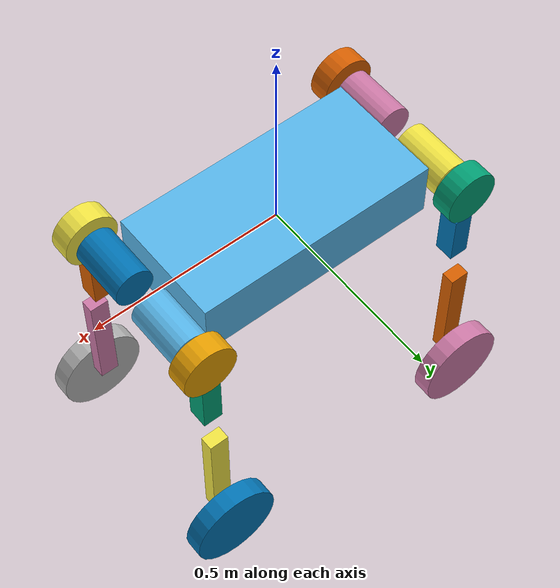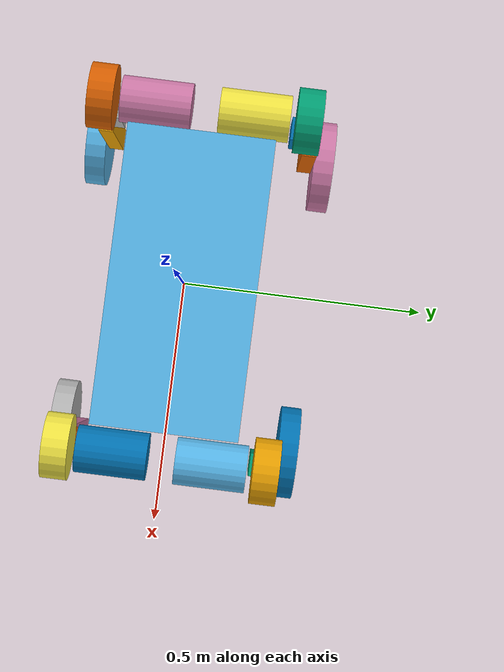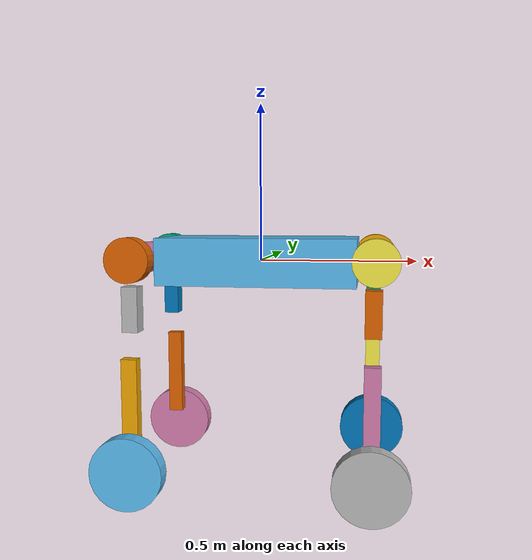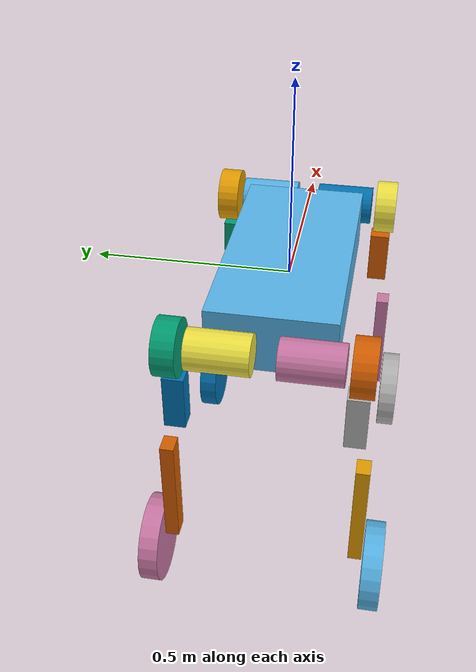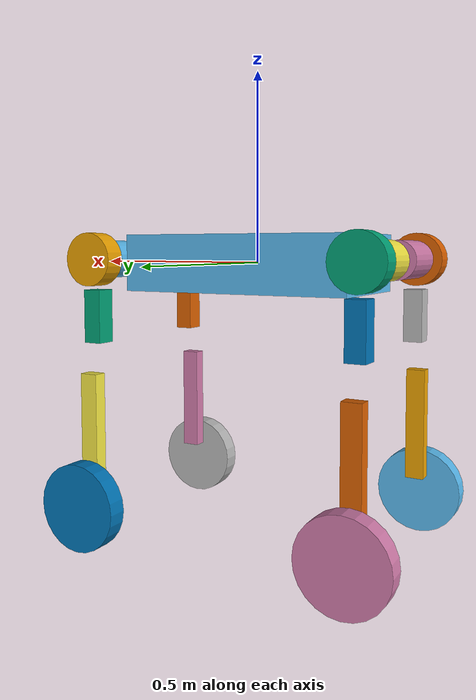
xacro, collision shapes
<?xml version="1.0"?>

<robot name="bitter" xmlns:xacro="http://www.ros.org/wiki/xacro">

    <xacro:include filename="$(find bitter)/xacro/const.xacro"/>
    <xacro:include filename="$(find bitter)/xacro/leg.xacro"/>

    <link name="base">
        <visual>
            <origin rpy="0 0 0" xyz="0 0 0"/>
            <geometry>
                <box size="0.001 0.001 0.001"/>
            </geometry>
        </visual>
    </link>

    <joint name="floating_base" type="fixed">
        <origin rpy="0 0 0" xyz="0 0 0"/>
        <parent link="base"/>
        <child link="trunk"/>
    </joint>

    <!-- 躯干 -->
    <link name="trunk">
        <visual>
            <origin rpy="0 0 0" xyz="0 0 0"/>
            <geometry>
                <mesh filename="package://bitter/meshes/Base.STL" scale="1 1 1"/>
            </geometry>
        </visual>
        <collision>
            <origin rpy="0 0 0" xyz="0 0 ${trunk_offset}"/>
            <geometry>
                <box size="${trunk_length} ${trunk_width} ${trunk_height}"/>
            </geometry>
        </collision>
        <inertial>
            <origin
                xyz="8.1667E-05 5.1958E-08 -8.1761E-05"
                rpy="0 0 0" />
            <mass value="${trunk_mass}" />
            <inertia
            ixx="0.014643"
            ixy="-7.4373E-07"
            ixz="-2.2677E-06"
            iyy="0.041348"
            iyz="-4.635E-06"
            izz="0.04937" />
        </inertial>
    </link>

    <!--imu-->
    <joint name="imu_joint" type="fixed">
        <parent link="base"/>
        <child link="imu_link"/>
        <origin rpy="0 0 0" xyz="0 0 0"/>
    </joint>

    <link name="imu_link">
        <inertial>
            <mass value="0.001"/>
            <origin rpy="0 0 0" xyz="0 0 0"/>
            <inertia ixx="0.0001" ixy="0" ixz="0" iyy="0.0001" iyz="0" izz="0.0001"/>
        </inertial>
        <visual>
            <origin rpy="0 0 0" xyz="0 0 0"/>
            <geometry>
                <box size="0.001 0.001 0.001"/>
            </geometry>

        </visual>
        <collision>
            <origin rpy="0 0 0" xyz="0 0 0"/>
            <geometry>
                <box size=".001 .001 .001"/>
            </geometry>
        </collision>
    </link>

    <!-- 4 legs 每条腿通过xacro:leg宏来实例化-->
    <xacro:leg name="FR" mirror="-1" mirror_dae= "False" front_hind="1"  front_hind_dae="True"  />
    <xacro:leg name="FL" mirror="1"  mirror_dae="True"   front_hind="1"  front_hind_dae="True"  />
    <xacro:leg name="RR" mirror="-1" mirror_dae="False"  front_hind="-1" front_hind_dae="False" />
    <xacro:leg name="RL" mirror="1"  mirror_dae="True"   front_hind="-1" front_hind_dae="False" />
</robot>

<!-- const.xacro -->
<robot xmlns:xacro="http://www.ros.org/wiki/xacro">

    <!-- Constants for robot dimensions -->
    <xacro:property name="PI" value="3.1415926535897931"/>

    <!-- 对于参数的修改，可视化的机器人只是虚拟的，碰撞为简单的几何体，参考宇树科技。未曾手动修改惯性
        矩阵。-->
    <!-- 碰撞体大小为测的sw模型值，大概率不改。但是碰撞体积和碰撞体积偏移量也许会时常修改
        在这里设参数化，这样子如果后续发现参数不合理，可以直接在这里修改 -->

    <!--原点在trunk的质心，虽然trunk是个空架子 -->
    <xacro:property name="trunk_width" value="0.310"/>
    <xacro:property name="trunk_length" value="0.630"/>
    <xacro:property name="trunk_height" value="0.150"/>
    <xacro:property name="trunk_offset" value="0.0"/><!--coollsion的z向偏移-->

    <!--hip指髋关节-->
    <xacro:property name="hip_length" value="0.055"/>
    <xacro:property name="hip_radius" value="0.070"/>
    <xacro:property name="hip_offset_y" value="0.13"/><!--是collision相对于link原点在y方向的s移-->
    <xacro:property name="hip_offset_x" value="0.070"/> <!--是joint相对于link原点在x方向的偏移-->

    <!--thigh指大腿关节-->
    <xacro:property name="thigh_length" value="0.140"/>
    <xacro:property name="thigh_width" value="0.052"/>
    <xacro:property name="thigh_height" value="0.050"/>
    <xacro:property name="thigh_offset_y" value="-0.040"/> <!--碰撞体的偏移-->

    <xacro:property name="thigh_joint_offset_x" value="0.065"/>
    <xacro:property name="thigh_joint_offset_y" value="0.1625"/> <!--指的joint在y方向的偏移，相对于2坐标系吧，要调-->

    <!--小腿关节-->
    <xacro:property name="calf_length" value="0.300"/>
    <xacro:property name="calf_width" value="0.035"/>
    <xacro:property name="calf_height" value="0.050"/>
    <xacro:property name="calf_offset_y" value="0.005"/> <!--碰撞体的偏移-->
    <xacro:property name="calf_joint_offset_y" value="-0.01885"/> <!--导出的值-->
    <xacro:property name="calf_joint_offset_z" value="-0.3 "/>

    <!--轮子关节-->
    <xacro:property name="foot_radius" value="0.115"/>
    <xacro:property name="foot_length" value="0.050"/>
    <xacro:property name="foot_joint_offset_y" value="0.051"/> <!--导出的值-->
    <xacro:property name="foot_joint_offset_z" value="-0.34408 "/>

    <xacro:property name="foot_offset" value="0.0"/> <!--是collision相对于link原点在y方向的偏移-->

    <!-- leg offset from trunk center value 整条腿的偏移，也就是髋关节碰撞体（小圆柱）
        的原点位置，这是左前腿的偏移，需要调>
        在hip中，leg_offset_xyz是hip的joint的，link的手填了，collision的是hip_offset -->
    <xacro:property name="leg_offset_x" value="0.30195"/>
    <xacro:property name="leg_offset_y" value="0.089394"/>
    <xacro:property name="leg_offset_z" value="0.009556"/>
    <!--5.21添加：髋关节碰撞圆柱体-->
    <xacro:property name="hip_stator_offset_x" value="0.07"/>
    <xacro:property name="hip_stator_offset_y" value="0.015"/>

    <!-- joint limits -->
    <xacro:property name="damping" value="0.0"/>
    <xacro:property name="friction" value="0.0"/>
    <xacro:property name="hip_position_max" value="0.79"/>
    <xacro:property name="hip_position_min" value="-0.79"/>
    <xacro:property name="hip_velocity_max" value="11.99"/>
    <xacro:property name="hip_torque_max" value="200"/>
    <xacro:property name="thigh_position_max" value="0.9"/>
    <xacro:property name="thigh_position_min" value="-1.0"/>
    <xacro:property name="thigh_velocity_max" value="11.99"/>
    <xacro:property name="thigh_torque_max" value="200"/>
    <xacro:property name="calf_position_max" value="2.0"/>
    <xacro:property name="calf_position_min" value="0.0"/>
    <xacro:property name="calf_velocity_max" value="11.99"/>
    <xacro:property name="calf_torque_max" value="200"/>
    <xacro:property name="foot_torque_max" value="35"/>
    <xacro:property name="foot_velocity_max" value="83.78"/>

    <!-- dynamics inertial value -->
    <!-- trunk 我已经手动赋值好了，下面腿太多了用参数-->
    <xacro:property name="trunk_mass" value="20.1"/> <!--没更新-->

    <!-- hip (left front) -->
    <xacro:property name="hip_mass" value="3.8143"/>
    <xacro:property name="hip_com_x" value="0.061582"/>
    <xacro:property name="hip_com_y" value="0.016575"/>
    <xacro:property name="hip_com_z" value="0.0023406"/>

    <xacro:property name="hip_ixx" value="0.00126034"/>
    <xacro:property name="hip_ixy" value="-2.577E-05"/>
    <xacro:property name="hip_ixz" value="-3.507E-05"/>
    <xacro:property name="hip_iyy" value="0.00072589"/>
    <xacro:property name="hip_iyz" value="1.861E-05"/>
    <xacro:property name="hip_izz" value="0.00136839"/>

        <!-- thigh -->
    <xacro:property name="thigh_mass" value="1.9052"/>
    <xacro:property name="thigh_com_x" value="-0.0017599"/>
    <xacro:property name="thigh_com_y" value="-0.033877"/>
    <xacro:property name="thigh_com_z" value="-0.087245"/>

    <xacro:property name="thigh_ixx" value="0.00687419"/>
    <xacro:property name="thigh_ixy" value="4.05E-06"/>
    <xacro:property name="thigh_ixz" value="-6.615E-05"/>
    <xacro:property name="thigh_iyy" value="0.00716420"/>
    <xacro:property name="thigh_iyz" value="8.810E-05"/>
    <xacro:property name="thigh_izz" value="0.00074917"/>

    <!-- calf 需要zuo'qian'tui -->
    <xacro:property name="calf_mass" value="0.75"/> <!--验证了-->
    <xacro:property name="calf_com_x" value="0.0067148"/>
    <xacro:property name="calf_com_y" value="-0.0065919"/>
    <xacro:property name="calf_com_z" value="-0.25451"/>

    <xacro:property name="calf_ixx" value="0.00722169"/>
    <xacro:property name="calf_ixy" value="2.209E-05"/>
    <xacro:property name="calf_ixz" value="-0.00026683"/>
    <xacro:property name="calf_iyy" value="0.00739374"/>
    <xacro:property name="calf_iyz" value="0.00029351"/>
    <xacro:property name="calf_izz" value="0.00044439"/>

    <!-- foot 左前腿，这个的惯性矩阵没有改-->
    <xacro:property name="foot_mass" value="3.0157"/>
    <xacro:property name="foot_com_x" value="-4.9166E-06"/>
    <xacro:property name="foot_com_y" value="-0.00074558"/>
    <xacro:property name="foot_com_z" value="9.2139E-06"/>

    <xacro:property name="foot_ixx" value="0.0046374"/>
    <xacro:property name="foot_ixy" value="-2.4127E-08"/>
    <xacro:property name="foot_ixz" value="-4.0829E-06"/>
    <xacro:property name="foot_iyy" value="0.0088894"/>
    <xacro:property name="foot_iyz" value="-4.25E-08"/>
    <xacro:property name="foot_izz" value="0.0046429"/>

</robot>

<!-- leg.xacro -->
<robot xmlns:xacro="http://www.ros.org/wiki/xacro">

    <xacro:macro name="leg" params="name mirror mirror_dae front_hind front_hind_dae">

        <!--hip指髋关节-->
        <joint name="${name}_hip_joint" type="revolute">
            <xacro:if value="${(mirror_dae == False) and (front_hind_dae == True)}">
                <origin rpy="0 0 0" xyz="${leg_offset_x} ${-leg_offset_y} ${leg_offset_z}"/>
            </xacro:if>
            <xacro:if value="${(mirror_dae == True) and (front_hind_dae == True)}">
                <origin rpy="0 0 0" xyz="${leg_offset_x} ${leg_offset_y} ${leg_offset_z}"/>
            </xacro:if>
            <xacro:if value="${(mirror_dae == False) and (front_hind_dae == False)}">
                <origin rpy="0 0 0" xyz="${-leg_offset_x} ${-leg_offset_y} ${leg_offset_z}"/>
            </xacro:if>
            <xacro:if value="${(mirror_dae == True) and (front_hind_dae == False)}">
                <origin rpy="0 0 0" xyz="${-leg_offset_x} ${leg_offset_y} ${leg_offset_z}"/>
            </xacro:if>
            <parent link="base"/>
            <child link="${name}_hip"/>
            <axis xyz="1 0 0"/> <!--导出的是-1，绕世界坐标系的-y轴转，因为urdf导出反的，注意-->
            <dynamics damping="${damping}" friction="${friction}"/>
            <xacro:if value="${(mirror_dae == True)}">
                <limit effort="${hip_torque_max}" velocity="${hip_velocity_max}" lower="${hip_position_min}" upper="${hip_position_max}"/>
            </xacro:if>
            <xacro:if value="${(mirror_dae == False)}">
                <limit effort="${hip_torque_max}" velocity="${hip_velocity_max}" lower="${-hip_position_max}" upper="${-hip_position_min}"/>
            </xacro:if>
        </joint>

        <joint name="${name}_hip_stator_fixed" type="fixed">
            <xacro:if value="${(mirror_dae == False) and (front_hind_dae == True)}">
                <origin rpy="0 0 0" xyz="${hip_stator_offset_x} ${-hip_stator_offset_y} 0"/>
            </xacro:if>
            <xacro:if value="${(mirror_dae == True) and (front_hind_dae == True)}">
                <origin rpy="0 0 0" xyz="${hip_stator_offset_x} ${hip_stator_offset_y} 0"/>
            </xacro:if>
            <xacro:if value="${(mirror_dae == False) and (front_hind_dae == False)}">
                <origin rpy="0 0 0" xyz="${-hip_stator_offset_x} ${-hip_stator_offset_y} 0"/>
            </xacro:if>
            <xacro:if value="${(mirror_dae == True) and (front_hind_dae == False)}">
                <origin rpy="0 0 0" xyz="${-hip_stator_offset_x} ${hip_stator_offset_y} 0"/>
            </xacro:if>
            <parent link="${name}_hip"/>
            <child link="${name}_hip_stator"/>
            <origin rpy="0 0 0" xyz="0 0 0"/>
        </joint>

        <link name="${name}_hip">
            <visual> <!--注意：这里link的原点手敲的，如果重新导出记得改-->
                <xacro:if value="${(mirror_dae == True) and (front_hind_dae == True)}">
                    <origin rpy="0 0 0" xyz="0 0 0"/>
                    <geometry>
                        <mesh filename="package://bitter/meshes/FL_hip_link.STL" scale="1 1 1"/>
                    </geometry>
                </xacro:if>
                <xacro:if value="${(mirror_dae == False) and (front_hind_dae == True)}">
                    <origin rpy="0 0 0" xyz="0 0 0"/>
                    <geometry>
                        <mesh filename="package://bitter/meshes/FR_hip_link.STL" scale="1 1 1"/>
                    </geometry>
                </xacro:if>
                <xacro:if value="${(mirror_dae == True) and (front_hind_dae == False)}">
                    <origin rpy="0 0 0" xyz="0 0 0"/>
                    <geometry>
                        <mesh filename="package://bitter/meshes/RL_hip_link.STL" scale="1 1 1"/>
                    </geometry>
                </xacro:if>
                <xacro:if value="${(mirror_dae == False) and (front_hind_dae == False)}">
                    <origin rpy="0 0 0" xyz="0 0 0"/>
                    <geometry>
                        <mesh filename="package://bitter/meshes/RR_hip_link.STL" scale="1 1 1"/>
                    </geometry>
                </xacro:if>

            </visual>
            <collision>
                <origin rpy="${PI/2.0} 0 0" xyz="${hip_offset_x*front_hind} ${hip_offset_y*mirror} 0"/>
                <geometry>
                    <cylinder length="${hip_length}" radius="${hip_radius}"/>
                </geometry>
            </collision>
            <inertial>
                <origin rpy="0 0 0" xyz="${hip_com_x*front_hind} ${hip_com_y*mirror} ${hip_com_z}"/>
                <mass value="${hip_mass}"/>
                <inertia
                    ixx="${hip_ixx}" ixy="${hip_ixy*mirror*front_hind}" ixz="${hip_ixz*front_hind}"
                    iyy="${hip_iyy}" iyz="${hip_iyz*mirror}"
                    izz="${hip_izz}"/>
            </inertial>
        </link>

        <link name="${name}_hip_stator">
                <!--不需要视觉，只要碰撞，5.21加的-->
            <collision>
                <origin rpy="${PI/2.0} 0 0" xyz="0 0 0"/>
                <geometry>
                    <cylinder length="0.15" radius="0.05"/>
                </geometry>
            </collision>
        </link>

        <!--thigh指大腿-->
        <joint name="${name}_thigh_joint" type="revolute">
            <origin rpy="0 0 0" xyz="${thigh_joint_offset_x*front_hind} ${thigh_joint_offset_y*mirror} 0"/>
            <parent link="${name}_hip"/>
            <child link="${name}_thigh"/>
            <axis xyz="0 -1 0"/>
            <dynamics damping="${damping}" friction="${friction}"/>
            <limit effort="${thigh_torque_max}" velocity="${thigh_velocity_max}" lower="${thigh_position_min}" upper="${thigh_position_max}"/>
        </joint>

        <link name="${name}_thigh">
            <visual>
                <origin rpy="0 0 0" xyz="0 0 0"/>
                <geometry>
                    <xacro:if value="${mirror_dae == True}"> <!--左边-->
                        <mesh filename="package://bitter/meshes/FL_thigh_link.STL" scale="1 1 1"/>
                    </xacro:if>
                    <xacro:if value="${mirror_dae == False}"><!--右边-->
                        <mesh filename="package://bitter/meshes/FR_thigh_link.STL" scale="1 1 1"/>
                    </xacro:if>
                </geometry>
            </visual>
            <collision> <!--将碰撞几何体的原点设置在大腿长度的中间位置,叉掉，看不懂自己之前写什么了-->
                <origin rpy="0 ${PI/2.0} 0" xyz="0 ${thigh_offset_y*mirror} ${-thigh_length-0.01}"/>
                <geometry>
                    <box size="${thigh_length} ${thigh_width} ${thigh_height}"/>
                </geometry>
            </collision>
            <inertial>
                <origin rpy="0 0 0" xyz="${thigh_com_x} ${thigh_com_y*mirror} ${thigh_com_z}"/>
                <mass value="${thigh_mass}"/>
                <inertia
                    ixx="${thigh_ixx}" ixy="${thigh_ixy*mirror}" ixz="${thigh_ixz}"
                    iyy="${thigh_iyy}" iyz="${thigh_iyz*mirror}"
                    izz="${thigh_izz}"/>
            </inertial>
        </link>

        <!--calf指小腿-->
        <joint name="${name}_calf_joint" type="revolute">
            <origin rpy="0 0 0" xyz="0 ${calf_joint_offset_y*mirror} ${calf_joint_offset_z}"/>
            <parent link="${name}_thigh"/>
            <child link="${name}_calf"/>
            <axis xyz="0 -1 0"/> <!--这个和导出的一样1,但是不满足逆时针为正，改为-1-->
            <dynamics damping="${damping}" friction="${friction}"/>
            <xacro:if value="${front_hind_dae == True}">
                <limit effort="${calf_torque_max}" velocity="${calf_velocity_max}" lower="${calf_position_min}" upper="${calf_position_max}"/>
            </xacro:if>
            <xacro:if value="${front_hind_dae == False}">
                <limit effort="${calf_torque_max}" velocity="${calf_velocity_max}" lower="${-calf_position_max}" upper="${-calf_position_min}"/>
            </xacro:if>
        </joint>

        <link name="${name}_calf">
            <visual>
                <origin rpy="0 0 0" xyz="0 0 0"/>
                <geometry>
                    <xacro:if value="${mirror_dae == True}"> <!--左边-->
                        <mesh filename="package://bitter/meshes/FL_calf_link.STL" scale="1 1 1"/>
                    </xacro:if>
                    <xacro:if value="${mirror_dae == False}"><!--右边-->
                        <mesh filename="package://bitter/meshes/FR_calf_link.STL" scale="1 1 1"/>
                    </xacro:if>
                </geometry>
            </visual>
            <collision>
                <origin rpy="0 ${PI/2.0} 0" xyz="0 ${calf_offset_y*mirror} ${-calf_length/2.0}"/>
                <geometry>
                    <box size="${calf_length} ${calf_width} ${calf_height}"/>
                </geometry>
            </collision>
            <inertial>
                <origin rpy="0 0 0" xyz="${calf_com_x} ${calf_com_y*mirror} ${calf_com_z}"/>
                <mass value="${calf_mass}"/>
                <inertia
                    ixx="${calf_ixx}" ixy="${calf_ixy*mirror}" ixz="${calf_ixz}"
                    iyy="${calf_iyy}" iyz="${calf_iyz*mirror}"
                    izz="${calf_izz}"/>
            </inertial>
        </link>

        <!--foot指轮胎-->
        <joint name="${name}_foot_joint" type="continuous">
            <origin rpy="0 0 0" xyz="0 ${foot_joint_offset_y*mirror} ${foot_joint_offset_z}"/>
            <parent link="${name}_calf"/>
            <child link="${name}_foot"/>
            <axis xyz="0 -1 0"/>
            <dynamics damping="${damping}" friction="${friction}"/>
            <limit effort="${foot_torque_max}" velocity="${foot_velocity_max}" />
        </joint>

        <link name="${name}_foot">
            <visual>
                <origin rpy="0 0 0" xyz="0 0 0"/>
                <geometry>
                    <xacro:if value="${mirror_dae == True}"> <!--左边-->
                        <mesh filename="package://bitter/meshes/FL_wheel_link.STL" scale="1 1 1"/>
                    </xacro:if>
                    <xacro:if value="${mirror_dae == False}"><!--右边-->
                        <mesh filename="package://bitter/meshes/FR_wheel_link.STL" scale="1 1 1"/>
                    </xacro:if>
                </geometry>
            </visual>
            <collision>
                <origin rpy="${PI/2.0} 0 0" xyz="0 ${foot_offset*mirror} 0"/>
                <geometry>
                    <cylinder length="${foot_length}" radius="${foot_radius}"/>
                </geometry>
            </collision>
            <inertial>
                <origin rpy="0 0 0" xyz="${foot_com_x} ${foot_com_y*mirror} ${foot_com_z}"/>
                <mass value="${foot_mass}"/>
                <inertia
                    ixx="${foot_ixx}" ixy="${foot_ixy*mirror}" ixz="${foot_ixz}"
                    iyy="${foot_iyy}" iyz="${foot_iyz*mirror}"
                    izz="${foot_izz}"/>
            </inertial>
        </link>

    </xacro:macro>
</robot>
